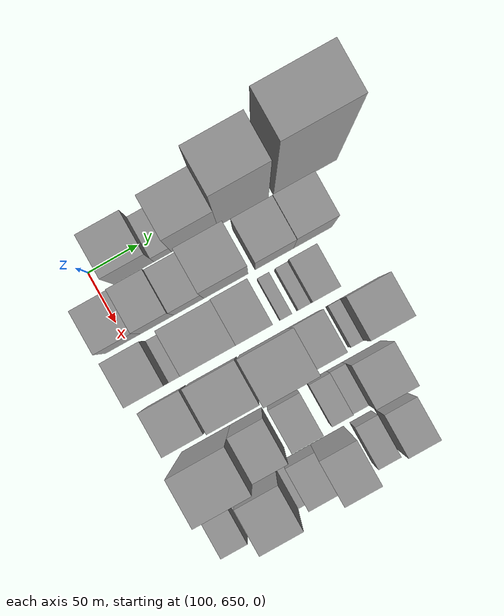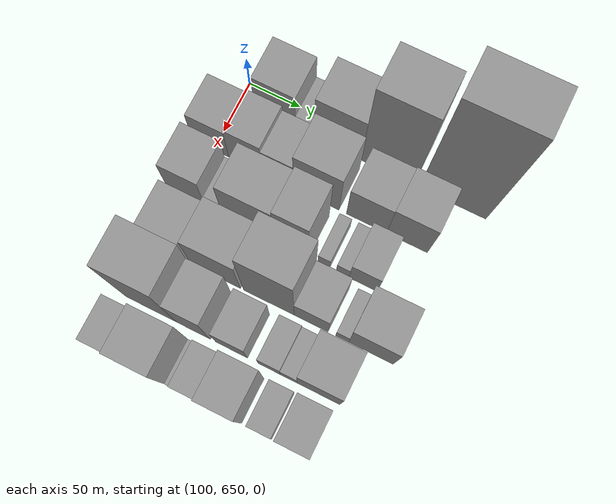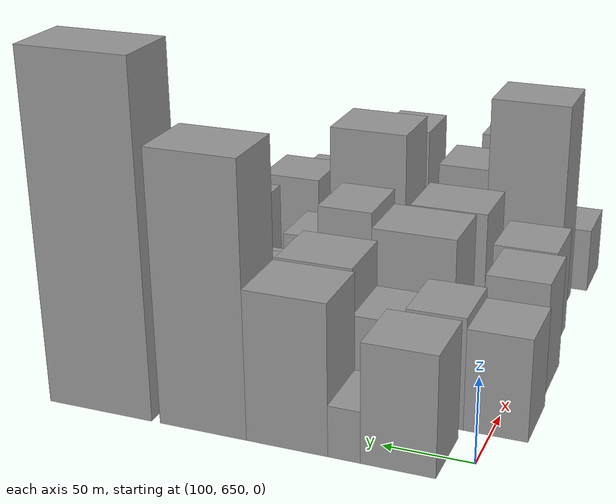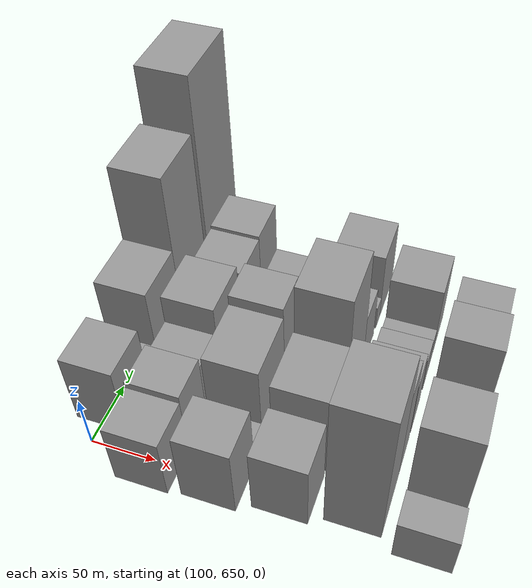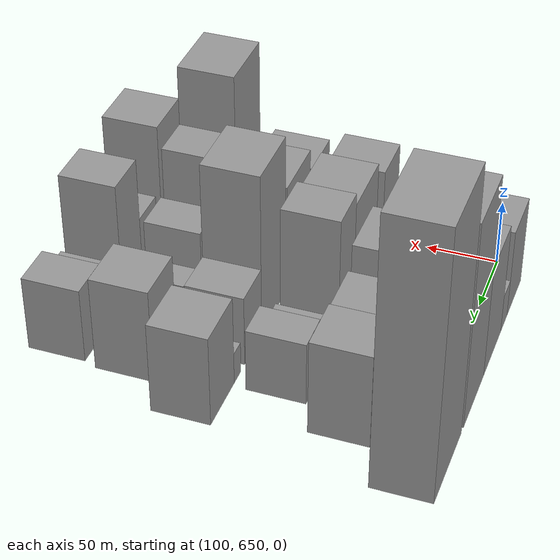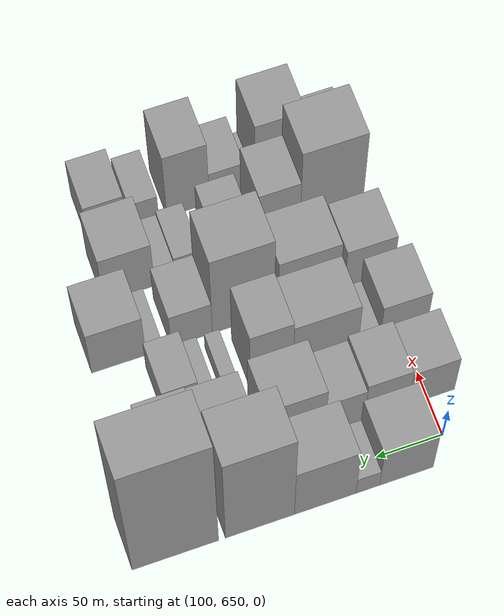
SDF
<sdf version="1.6">
 <world name="default">
  <model name="building_43">
   <static>1</static>
   <pose>100.0000 685.0335 0 0.000000 0.000000 0.000000</pose>
   <link name="link">
    <pose>0 0 34.50 0 0 0</pose>
    <collision name="collision"><geometry><box><size>40.0000 40.1339 69.0000</size></box></geometry></collision>
    <visual name="visual">
     <cast_shadows>0</cast_shadows>
     <geometry><box><size>40.0000 40.1339 69.0000</size></box></geometry>
     <material>
      <script>
       <uri>model://grey_wall/materials/scripts</uri>
       <uri>model://grey_wall/materials/textures</uri>
       <name>vrc/grey_wall</name>
      </script>
     </material>
    </visual>
   </link>
  </model>
  <model name="building_44">
   <static>1</static>
   <pose>100.0000 713.9107 0 0.000000 0.000000 0.000000</pose>
   <link name="link">
    <pose>0 0 15.00 0 0 0</pose>
    <collision name="collision"><geometry><box><size>40.0000 17.6204 30.0000</size></box></geometry></collision>
    <visual name="visual">
     <cast_shadows>0</cast_shadows>
     <geometry><box><size>40.0000 17.6204 30.0000</size></box></geometry>
     <material>
      <script>
       <uri>model://grey_wall/materials/scripts</uri>
       <uri>model://grey_wall/materials/textures</uri>
       <name>vrc/grey_wall</name>
      </script>
     </material>
    </visual>
   </link>
  </model>
  <model name="building_45">
   <static>1</static>
   <pose>100.0000 745.5148 0 0.000000 0.000000 0.000000</pose>
   <link name="link">
    <pose>0 0 43.50 0 0 0</pose>
    <collision name="collision"><geometry><box><size>40.0000 45.5877 87.0000</size></box></geometry></collision>
    <visual name="visual">
     <cast_shadows>0</cast_shadows>
     <geometry><box><size>40.0000 45.5877 87.0000</size></box></geometry>
     <material>
      <script>
       <uri>model://grey_wall/materials/scripts</uri>
       <uri>model://grey_wall/materials/textures</uri>
       <name>vrc/grey_wall</name>
      </script>
     </material>
    </visual>
   </link>
  </model>
  <model name="building_46">
   <static>1</static>
   <pose>100.0000 793.6460 0 0.000000 0.000000 0.000000</pose>
   <link name="link">
    <pose>0 0 78.00 0 0 0</pose>
    <collision name="collision"><geometry><box><size>40.0000 50.6748 156.0000</size></box></geometry></collision>
    <visual name="visual">
     <cast_shadows>0</cast_shadows>
     <geometry><box><size>40.0000 50.6748 156.0000</size></box></geometry>
     <material>
      <script>
       <uri>model://grey_wall/materials/scripts</uri>
       <uri>model://grey_wall/materials/textures</uri>
       <name>vrc/grey_wall</name>
      </script>
     </material>
    </visual>
   </link>
  </model>
  <model name="building_47">
   <static>1</static>
   <pose>100.0000 855.4738 0 0.000000 0.000000 0.000000</pose>
   <link name="link">
    <pose>0 0 100.50 0 0 0</pose>
    <collision name="collision"><geometry><box><size>40.0000 62.9809 201.0000</size></box></geometry></collision>
    <visual name="visual">
     <cast_shadows>0</cast_shadows>
     <geometry><box><size>40.0000 62.9809 201.0000</size></box></geometry>
     <material>
      <script>
       <uri>model://grey_wall/materials/scripts</uri>
       <uri>model://grey_wall/materials/textures</uri>
       <name>vrc/grey_wall</name>
      </script>
     </material>
    </visual>
   </link>
  </model>
  <model name="building_84">
   <static>1</static>
   <pose>149.0000 647.2620 0 0.000000 0.000000 0.000000</pose>
   <link name="link">
    <pose>0 0 30.00 0 0 0</pose>
    <collision name="collision"><geometry><box><size>40.0000 35.1339 60.0000</size></box></geometry></collision>
    <visual name="visual">
     <cast_shadows>0</cast_shadows>
     <geometry><box><size>40.0000 35.1339 60.0000</size></box></geometry>
     <material>
      <script>
       <uri>model://grey_wall/materials/scripts</uri>
       <uri>model://grey_wall/materials/textures</uri>
       <name>vrc/grey_wall</name>
      </script>
     </material>
    </visual>
   </link>
  </model>
  <model name="building_85">
   <static>1</static>
   <pose>149.0000 681.3582 0 0.000000 0.000000 0.000000</pose>
   <link name="link">
    <pose>0 0 33.00 0 0 0</pose>
    <collision name="collision"><geometry><box><size>40.0000 33.0585 66.0000</size></box></geometry></collision>
    <visual name="visual">
     <cast_shadows>0</cast_shadows>
     <geometry><box><size>40.0000 33.0585 66.0000</size></box></geometry>
     <material>
      <script>
       <uri>model://grey_wall/materials/scripts</uri>
       <uri>model://grey_wall/materials/textures</uri>
       <name>vrc/grey_wall</name>
      </script>
     </material>
    </visual>
   </link>
  </model>
  <model name="building_86">
   <static>1</static>
   <pose>149.0000 712.7002 0 0.000000 0.000000 0.000000</pose>
   <link name="link">
    <pose>0 0 28.50 0 0 0</pose>
    <collision name="collision"><geometry><box><size>40.0000 29.6255 57.0000</size></box></geometry></collision>
    <visual name="visual">
     <cast_shadows>0</cast_shadows>
     <geometry><box><size>40.0000 29.6255 57.0000</size></box></geometry>
     <material>
      <script>
       <uri>model://grey_wall/materials/scripts</uri>
       <uri>model://grey_wall/materials/textures</uri>
       <name>vrc/grey_wall</name>
      </script>
     </material>
    </visual>
   </link>
  </model>
  <model name="building_87">
   <static>1</static>
   <pose>149.0000 749.3978 0 0.000000 0.000000 0.000000</pose>
   <link name="link">
    <pose>0 0 42.00 0 0 0</pose>
    <collision name="collision"><geometry><box><size>40.0000 43.7697 84.0000</size></box></geometry></collision>
    <visual name="visual">
     <cast_shadows>0</cast_shadows>
     <geometry><box><size>40.0000 43.7697 84.0000</size></box></geometry>
     <material>
      <script>
       <uri>model://grey_wall/materials/scripts</uri>
       <uri>model://grey_wall/materials/textures</uri>
       <name>vrc/grey_wall</name>
      </script>
     </material>
    </visual>
   </link>
  </model>
  <model name="building_88">
   <static>1</static>
   <pose>149.0000 797.3217 0 0.000000 0.000000 0.000000</pose>
   <link name="link">
    <pose>0 0 34.50 0 0 0</pose>
    <collision name="collision"><geometry><box><size>40.0000 38.0780 69.0000</size></box></geometry></collision>
    <visual name="visual">
     <cast_shadows>0</cast_shadows>
     <geometry><box><size>40.0000 38.0780 69.0000</size></box></geometry>
     <material>
      <script>
       <uri>model://grey_wall/materials/scripts</uri>
       <uri>model://grey_wall/materials/textures</uri>
       <name>vrc/grey_wall</name>
      </script>
     </material>
    </visual>
   </link>
  </model>
  <model name="building_89">
   <static>1</static>
   <pose>149.0000 835.4678 0 0.000000 0.000000 0.000000</pose>
   <link name="link">
    <pose>0 0 36.00 0 0 0</pose>
    <collision name="collision"><geometry><box><size>40.0000 38.2143 72.0000</size></box></geometry></collision>
    <visual name="visual">
     <cast_shadows>0</cast_shadows>
     <geometry><box><size>40.0000 38.2143 72.0000</size></box></geometry>
     <material>
      <script>
       <uri>model://grey_wall/materials/scripts</uri>
       <uri>model://grey_wall/materials/textures</uri>
       <name>vrc/grey_wall</name>
      </script>
     </material>
    </visual>
   </link>
  </model>
  <model name="building_138">
   <static>1</static>
   <pose>198.0000 650.2063 0 0.000000 0.000000 0.000000</pose>
   <link name="link">
    <pose>0 0 34.50 0 0 0</pose>
    <collision name="collision"><geometry><box><size>40.0000 36.1065 69.0000</size></box></geometry></collision>
    <visual name="visual">
     <cast_shadows>0</cast_shadows>
     <geometry><box><size>40.0000 36.1065 69.0000</size></box></geometry>
     <material>
      <script>
       <uri>model://grey_wall/materials/scripts</uri>
       <uri>model://grey_wall/materials/textures</uri>
       <name>vrc/grey_wall</name>
      </script>
     </material>
    </visual>
   </link>
  </model>
  <model name="building_139">
   <static>1</static>
   <pose>198.0000 676.5970 0 0.000000 0.000000 0.000000</pose>
   <link name="link">
    <pose>0 0 15.00 0 0 0</pose>
    <collision name="collision"><geometry><box><size>40.0000 16.6750 30.0000</size></box></geometry></collision>
    <visual name="visual">
     <cast_shadows>0</cast_shadows>
     <geometry><box><size>40.0000 16.6750 30.0000</size></box></geometry>
     <material>
      <script>
       <uri>model://grey_wall/materials/scripts</uri>
       <uri>model://grey_wall/materials/textures</uri>
       <name>vrc/grey_wall</name>
      </script>
     </material>
    </visual>
   </link>
  </model>
  <model name="building_140">
   <static>1</static>
   <pose>198.0000 709.4864 0 0.000000 0.000000 0.000000</pose>
   <link name="link">
    <pose>0 0 43.50 0 0 0</pose>
    <collision name="collision"><geometry><box><size>40.0000 49.1038 87.0000</size></box></geometry></collision>
    <visual name="visual">
     <cast_shadows>0</cast_shadows>
     <geometry><box><size>40.0000 49.1038 87.0000</size></box></geometry>
     <material>
      <script>
       <uri>model://grey_wall/materials/scripts</uri>
       <uri>model://grey_wall/materials/textures</uri>
       <name>vrc/grey_wall</name>
      </script>
     </material>
    </visual>
   </link>
  </model>
  <model name="building_141">
   <static>1</static>
   <pose>198.0000 750.1333 0 0.000000 0.000000 0.000000</pose>
   <link name="link">
    <pose>0 0 48.00 0 0 0</pose>
    <collision name="collision"><geometry><box><size>40.0000 32.1902 96.0000</size></box></geometry></collision>
    <visual name="visual">
     <cast_shadows>0</cast_shadows>
     <geometry><box><size>40.0000 32.1902 96.0000</size></box></geometry>
     <material>
      <script>
       <uri>model://grey_wall/materials/scripts</uri>
       <uri>model://grey_wall/materials/textures</uri>
       <name>vrc/grey_wall</name>
      </script>
     </material>
    </visual>
   </link>
  </model>
  <model name="building_142">
   <static>1</static>
   <pose>198.0000 780.8213 0 0.000000 0.000000 0.000000</pose>
   <link name="link">
    <pose>0 0 13.50 0 0 0</pose>
    <collision name="collision"><geometry><box><size>40.0000 11.1858 27.0000</size></box></geometry></collision>
    <visual name="visual">
     <cast_shadows>0</cast_shadows>
     <geometry><box><size>40.0000 11.1858 27.0000</size></box></geometry>
     <material>
      <script>
       <uri>model://grey_wall/materials/scripts</uri>
       <uri>model://grey_wall/materials/textures</uri>
       <name>vrc/grey_wall</name>
      </script>
     </material>
    </visual>
   </link>
  </model>
  <model name="building_143">
   <static>1</static>
   <pose>198.0000 798.4821 0 0.000000 0.000000 0.000000</pose>
   <link name="link">
    <pose>0 0 13.50 0 0 0</pose>
    <collision name="collision"><geometry><box><size>40.0000 12.1358 27.0000</size></box></geometry></collision>
    <visual name="visual">
     <cast_shadows>0</cast_shadows>
     <geometry><box><size>40.0000 12.1358 27.0000</size></box></geometry>
     <material>
      <script>
       <uri>model://grey_wall/materials/scripts</uri>
       <uri>model://grey_wall/materials/textures</uri>
       <name>vrc/grey_wall</name>
      </script>
     </material>
    </visual>
   </link>
  </model>
  <model name="building_144">
   <static>1</static>
   <pose>198.0000 817.7403 0 0.000000 0.000000 0.000000</pose>
   <link name="link">
    <pose>0 0 24.00 0 0 0</pose>
    <collision name="collision"><geometry><box><size>40.0000 26.3806 48.0000</size></box></geometry></collision>
    <visual name="visual">
     <cast_shadows>0</cast_shadows>
     <geometry><box><size>40.0000 26.3806 48.0000</size></box></geometry>
     <material>
      <script>
       <uri>model://grey_wall/materials/scripts</uri>
       <uri>model://grey_wall/materials/textures</uri>
       <name>vrc/grey_wall</name>
      </script>
     </material>
    </visual>
   </link>
  </model>
  <model name="building_194">
   <static>1</static>
   <pose>247.0000 657.6091 0 0.000000 0.000000 0.000000</pose>
   <link name="link">
    <pose>0 0 33.00 0 0 0</pose>
    <collision name="collision"><geometry><box><size>40.0000 37.8245 66.0000</size></box></geometry></collision>
    <visual name="visual">
     <cast_shadows>0</cast_shadows>
     <geometry><box><size>40.0000 37.8245 66.0000</size></box></geometry>
     <material>
      <script>
       <uri>model://grey_wall/materials/scripts</uri>
       <uri>model://grey_wall/materials/textures</uri>
       <name>vrc/grey_wall</name>
      </script>
     </material>
    </visual>
   </link>
  </model>
  <model name="building_195">
   <static>1</static>
   <pose>247.0000 703.9130 0 0.000000 0.000000 0.000000</pose>
   <link name="link">
    <pose>0 0 42.00 0 0 0</pose>
    <collision name="collision"><geometry><box><size>40.0000 46.7833 84.0000</size></box></geometry></collision>
    <visual name="visual">
     <cast_shadows>0</cast_shadows>
     <geometry><box><size>40.0000 46.7833 84.0000</size></box></geometry>
     <material>
      <script>
       <uri>model://grey_wall/materials/scripts</uri>
       <uri>model://grey_wall/materials/textures</uri>
       <name>vrc/grey_wall</name>
      </script>
     </material>
    </visual>
   </link>
  </model>
  <model name="building_196">
   <static>1</static>
   <pose>247.0000 753.9363 0 0.000000 0.000000 0.000000</pose>
   <link name="link">
    <pose>0 0 63.00 0 0 0</pose>
    <collision name="collision"><geometry><box><size>40.0000 47.2633 126.0000</size></box></geometry></collision>
    <visual name="visual">
     <cast_shadows>0</cast_shadows>
     <geometry><box><size>40.0000 47.2633 126.0000</size></box></geometry>
     <material>
      <script>
       <uri>model://grey_wall/materials/scripts</uri>
       <uri>model://grey_wall/materials/textures</uri>
       <name>vrc/grey_wall</name>
      </script>
     </material>
    </visual>
   </link>
  </model>
  <model name="building_197">
   <static>1</static>
   <pose>247.0000 793.2751 0 0.000000 0.000000 0.000000</pose>
   <link name="link">
    <pose>0 0 27.00 0 0 0</pose>
    <collision name="collision"><geometry><box><size>40.0000 31.4143 54.0000</size></box></geometry></collision>
    <visual name="visual">
     <cast_shadows>0</cast_shadows>
     <geometry><box><size>40.0000 31.4143 54.0000</size></box></geometry>
     <material>
      <script>
       <uri>model://grey_wall/materials/scripts</uri>
       <uri>model://grey_wall/materials/textures</uri>
       <name>vrc/grey_wall</name>
      </script>
     </material>
    </visual>
   </link>
  </model>
  <model name="building_198">
   <static>1</static>
   <pose>247.0000 821.9443 0 0.000000 0.000000 0.000000</pose>
   <link name="link">
    <pose>0 0 12.00 0 0 0</pose>
    <collision name="collision"><geometry><box><size>40.0000 11.9241 24.0000</size></box></geometry></collision>
    <visual name="visual">
     <cast_shadows>0</cast_shadows>
     <geometry><box><size>40.0000 11.9241 24.0000</size></box></geometry>
     <material>
      <script>
       <uri>model://grey_wall/materials/scripts</uri>
       <uri>model://grey_wall/materials/textures</uri>
       <name>vrc/grey_wall</name>
      </script>
     </material>
    </visual>
   </link>
  </model>
  <model name="building_199">
   <static>1</static>
   <pose>247.0000 848.2971 0 0.000000 0.000000 0.000000</pose>
   <link name="link">
    <pose>0 0 34.50 0 0 0</pose>
    <collision name="collision"><geometry><box><size>40.0000 40.7817 69.0000</size></box></geometry></collision>
    <visual name="visual">
     <cast_shadows>0</cast_shadows>
     <geometry><box><size>40.0000 40.7817 69.0000</size></box></geometry>
     <material>
      <script>
       <uri>model://grey_wall/materials/scripts</uri>
       <uri>model://grey_wall/materials/textures</uri>
       <name>vrc/grey_wall</name>
      </script>
     </material>
    </visual>
   </link>
  </model>
  <model name="building_243">
   <static>1</static>
   <pose>296.0000 669.3194 0 0.000000 0.000000 0.000000</pose>
   <link name="link">
    <pose>0 0 69.00 0 0 0</pose>
    <collision name="collision"><geometry><box><size>40.0000 48.1048 138.0000</size></box></geometry></collision>
    <visual name="visual">
     <cast_shadows>0</cast_shadows>
     <geometry><box><size>40.0000 48.1048 138.0000</size></box></geometry>
     <material>
      <script>
       <uri>model://grey_wall/materials/scripts</uri>
       <uri>model://grey_wall/materials/textures</uri>
       <name>vrc/grey_wall</name>
      </script>
     </material>
    </visual>
   </link>
  </model>
  <model name="building_244">
   <static>1</static>
   <pose>296.0000 709.0777 0 0.000000 0.000000 0.000000</pose>
   <link name="link">
    <pose>0 0 46.50 0 0 0</pose>
    <collision name="collision"><geometry><box><size>40.0000 31.4119 93.0000</size></box></geometry></collision>
    <visual name="visual">
     <cast_shadows>0</cast_shadows>
     <geometry><box><size>40.0000 31.4119 93.0000</size></box></geometry>
     <material>
      <script>
       <uri>model://grey_wall/materials/scripts</uri>
       <uri>model://grey_wall/materials/textures</uri>
       <name>vrc/grey_wall</name>
      </script>
     </material>
    </visual>
   </link>
  </model>
  <model name="building_245">
   <static>1</static>
   <pose>296.0000 744.4654 0 0.000000 0.000000 0.000000</pose>
   <link name="link">
    <pose>0 0 28.50 0 0 0</pose>
    <collision name="collision"><geometry><box><size>40.0000 29.3634 57.0000</size></box></geometry></collision>
    <visual name="visual">
     <cast_shadows>0</cast_shadows>
     <geometry><box><size>40.0000 29.3634 57.0000</size></box></geometry>
     <material>
      <script>
       <uri>model://grey_wall/materials/scripts</uri>
       <uri>model://grey_wall/materials/textures</uri>
       <name>vrc/grey_wall</name>
      </script>
     </material>
    </visual>
   </link>
  </model>
  <model name="building_246">
   <static>1</static>
   <pose>296.0000 779.2768 0 0.000000 0.000000 0.000000</pose>
   <link name="link">
    <pose>0 0 18.00 0 0 0</pose>
    <collision name="collision"><geometry><box><size>40.0000 20.2593 36.0000</size></box></geometry></collision>
    <visual name="visual">
     <cast_shadows>0</cast_shadows>
     <geometry><box><size>40.0000 20.2593 36.0000</size></box></geometry>
     <material>
      <script>
       <uri>model://grey_wall/materials/scripts</uri>
       <uri>model://grey_wall/materials/textures</uri>
       <name>vrc/grey_wall</name>
      </script>
     </material>
    </visual>
   </link>
  </model>
  <model name="building_247">
   <static>1</static>
   <pose>296.0000 797.1438 0 0.000000 0.000000 0.000000</pose>
   <link name="link">
    <pose>0 0 15.00 0 0 0</pose>
    <collision name="collision"><geometry><box><size>40.0000 15.4746 30.0000</size></box></geometry></collision>
    <visual name="visual">
     <cast_shadows>0</cast_shadows>
     <geometry><box><size>40.0000 15.4746 30.0000</size></box></geometry>
     <material>
      <script>
       <uri>model://grey_wall/materials/scripts</uri>
       <uri>model://grey_wall/materials/textures</uri>
       <name>vrc/grey_wall</name>
      </script>
     </material>
    </visual>
   </link>
  </model>
  <model name="building_248">
   <static>1</static>
   <pose>296.0000 824.3297 0 0.000000 0.000000 0.000000</pose>
   <link name="link">
    <pose>0 0 36.00 0 0 0</pose>
    <collision name="collision"><geometry><box><size>40.0000 38.8973 72.0000</size></box></geometry></collision>
    <visual name="visual">
     <cast_shadows>0</cast_shadows>
     <geometry><box><size>40.0000 38.8973 72.0000</size></box></geometry>
     <material>
      <script>
       <uri>model://grey_wall/materials/scripts</uri>
       <uri>model://grey_wall/materials/textures</uri>
       <name>vrc/grey_wall</name>
      </script>
     </material>
    </visual>
   </link>
  </model>
  <model name="building_293">
   <static>1</static>
   <pose>345.0000 648.8877 0 0.000000 0.000000 0.000000</pose>
   <link name="link">
    <pose>0 0 21.00 0 0 0</pose>
    <collision name="collision"><geometry><box><size>40.0000 25.1310 42.0000</size></box></geometry></collision>
    <visual name="visual">
     <cast_shadows>0</cast_shadows>
     <geometry><box><size>40.0000 25.1310 42.0000</size></box></geometry>
     <material>
      <script>
       <uri>model://grey_wall/materials/scripts</uri>
       <uri>model://grey_wall/materials/textures</uri>
       <name>vrc/grey_wall</name>
      </script>
     </material>
    </visual>
   </link>
  </model>
  <model name="building_294">
   <static>1</static>
   <pose>345.0000 665.3619 0 0.000000 0.000000 0.000000</pose>
   <link name="link">
    <pose>0 0 9.00 0 0 0</pose>
    <collision name="collision"><geometry><box><size>40.0000 7.8173 18.0000</size></box></geometry></collision>
    <visual name="visual">
     <cast_shadows>0</cast_shadows>
     <geometry><box><size>40.0000 7.8173 18.0000</size></box></geometry>
     <material>
      <script>
       <uri>model://grey_wall/materials/scripts</uri>
       <uri>model://grey_wall/materials/textures</uri>
       <name>vrc/grey_wall</name>
      </script>
     </material>
    </visual>
   </link>
  </model>
  <model name="building_295">
   <static>1</static>
   <pose>345.0000 691.3940 0 0.000000 0.000000 0.000000</pose>
   <link name="link">
    <pose>0 0 49.50 0 0 0</pose>
    <collision name="collision"><geometry><box><size>40.0000 38.2470 99.0000</size></box></geometry></collision>
    <visual name="visual">
     <cast_shadows>0</cast_shadows>
     <geometry><box><size>40.0000 38.2470 99.0000</size></box></geometry>
     <material>
      <script>
       <uri>model://grey_wall/materials/scripts</uri>
       <uri>model://grey_wall/materials/textures</uri>
       <name>vrc/grey_wall</name>
      </script>
     </material>
    </visual>
   </link>
  </model>
  <model name="building_296">
   <static>1</static>
   <pose>345.0000 714.5538 0 0.000000 0.000000 0.000000</pose>
   <link name="link">
    <pose>0 0 9.00 0 0 0</pose>
    <collision name="collision"><geometry><box><size>40.0000 8.0727 18.0000</size></box></geometry></collision>
    <visual name="visual">
     <cast_shadows>0</cast_shadows>
     <geometry><box><size>40.0000 8.0727 18.0000</size></box></geometry>
     <material>
      <script>
       <uri>model://grey_wall/materials/scripts</uri>
       <uri>model://grey_wall/materials/textures</uri>
       <name>vrc/grey_wall</name>
      </script>
     </material>
    </visual>
   </link>
  </model>
  <model name="building_297">
   <static>1</static>
   <pose>345.0000 732.3738 0 0.000000 0.000000 0.000000</pose>
   <link name="link">
    <pose>0 0 24.00 0 0 0</pose>
    <collision name="collision"><geometry><box><size>40.0000 27.5672 48.0000</size></box></geometry></collision>
    <visual name="visual">
     <cast_shadows>0</cast_shadows>
     <geometry><box><size>40.0000 27.5672 48.0000</size></box></geometry>
     <material>
      <script>
       <uri>model://grey_wall/materials/scripts</uri>
       <uri>model://grey_wall/materials/textures</uri>
       <name>vrc/grey_wall</name>
      </script>
     </material>
    </visual>
   </link>
  </model>
  <model name="building_298">
   <static>1</static>
   <pose>345.0000 762.6416 0 0.000000 0.000000 0.000000</pose>
   <link name="link">
    <pose>0 0 48.00 0 0 0</pose>
    <collision name="collision"><geometry><box><size>40.0000 32.9685 96.0000</size></box></geometry></collision>
    <visual name="visual">
     <cast_shadows>0</cast_shadows>
     <geometry><box><size>40.0000 32.9685 96.0000</size></box></geometry>
     <material>
      <script>
       <uri>model://grey_wall/materials/scripts</uri>
       <uri>model://grey_wall/materials/textures</uri>
       <name>vrc/grey_wall</name>
      </script>
     </material>
    </visual>
   </link>
  </model>
  <model name="building_299">
   <static>1</static>
   <pose>345.0000 795.9360 0 0.000000 0.000000 0.000000</pose>
   <link name="link">
    <pose>0 0 19.50 0 0 0</pose>
    <collision name="collision"><geometry><box><size>40.0000 21.6201 39.0000</size></box></geometry></collision>
    <visual name="visual">
     <cast_shadows>0</cast_shadows>
     <geometry><box><size>40.0000 21.6201 39.0000</size></box></geometry>
     <material>
      <script>
       <uri>model://grey_wall/materials/scripts</uri>
       <uri>model://grey_wall/materials/textures</uri>
       <name>vrc/grey_wall</name>
      </script>
     </material>
    </visual>
   </link>
  </model>
  <model name="building_300">
   <static>1</static>
   <pose>345.0000 824.8903 0 0.000000 0.000000 0.000000</pose>
   <link name="link">
    <pose>0 0 28.50 0 0 0</pose>
    <collision name="collision"><geometry><box><size>40.0000 30.2886 57.0000</size></box></geometry></collision>
    <visual name="visual">
     <cast_shadows>0</cast_shadows>
     <geometry><box><size>40.0000 30.2886 57.0000</size></box></geometry>
     <material>
      <script>
       <uri>model://grey_wall/materials/scripts</uri>
       <uri>model://grey_wall/materials/textures</uri>
       <name>vrc/grey_wall</name>
      </script>
     </material>
    </visual>
   </link>
  </model>
 </world>
</sdf>
